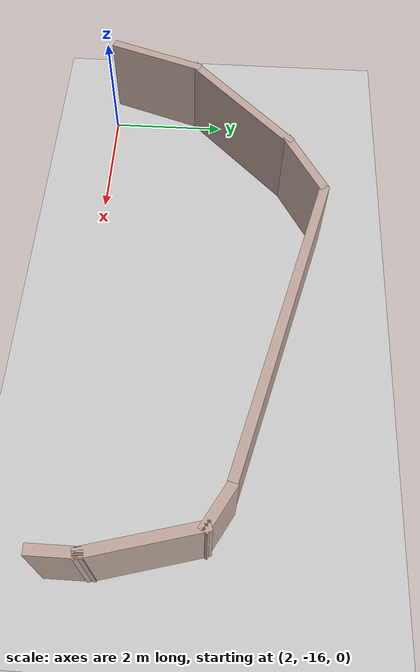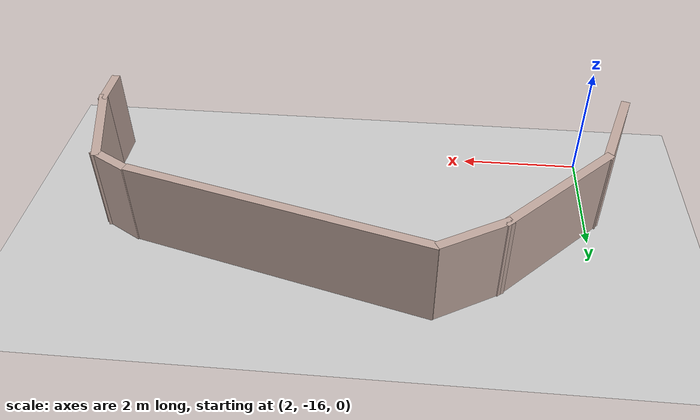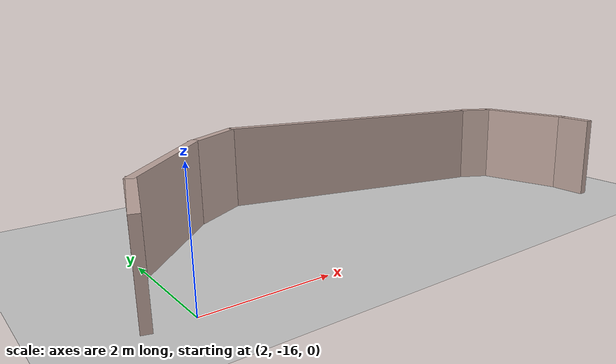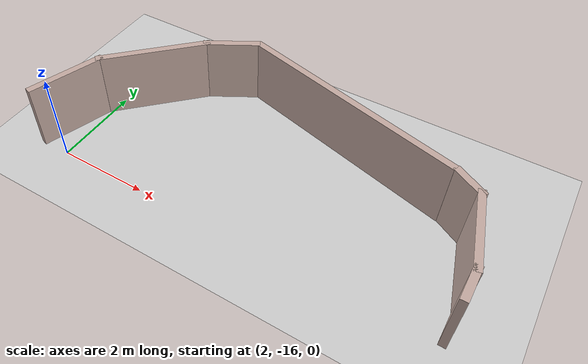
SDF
<sdf version="1.7">
 <world name="default">
  <model name="ground_plane">
   <static>1</static>
   <link name="link">
    <collision name="collision">
     <geometry><plane><normal>0 0 1</normal><size>100 100</size></plane></geometry>
     <surface><friction><ode><mu>100</mu><mu2>50</mu2></ode></friction></surface>
    </collision>
    <visual name="visual">
     <cast_shadows>0</cast_shadows>
     <geometry><plane><normal>0 0 1</normal><size>100 100</size></plane></geometry>
     <material>
      <script><uri>file://media/materials/scripts/gazebo.material</uri><name>Gazebo/Grey</name></script>
     </material>
    </visual>
   </link>
  </model>
  <model name="wall1">
   <pose>6.97273 -12.8415 0 0 0 -0.014727</pose>
   <link name="Wall_0">
    <collision name="Wall_0_Collision">
     <geometry><box><size>5.09773 0.15 1.5</size></box></geometry>
     <pose>0 0 0.75 0 -0 0</pose>
    </collision>
    <visual name="Wall_0_Visual">
     <pose>0 0 0.75 0 -0 0</pose>
     <geometry><box><size>5.09773 0.15 1.5</size></box></geometry>
     <material>
      <script><uri>file://media/materials/scripts/gazebo.material</uri><name>Gazebo/Grey</name></script>
      <ambient>0.760784 0.662745 0.627451 1</ambient>
     </material>
     <meta><layer>0</layer></meta>
    </visual>
    <pose>0 0 0 0 -0 -0.244979</pose>
   </link>
   <static>1</static>
  </model>
  <model name="Obstract">
   <link name="Wall_0">
    <pose>-4.71274 -6.64107 0 0 -0 1.24905</pose>
    <visual name="Wall_0_Visual">
     <pose>0 0 0.75 0 -0 0</pose>
     <geometry><box><size>1.73114 0.15 1.5</size></box></geometry>
     <material>
      <script><uri>file://media/materials/scripts/gazebo.material</uri><name>Gazebo/Grey</name></script>
      <ambient>0.760784 0.662745 0.627451 1</ambient>
      <shader type="pixel"/>
     </material>
     <meta><layer>0</layer></meta>
    </visual>
    <collision name="Wall_0_Collision">
     <pose>0 0 0.75 0 -0 0</pose>
     <geometry><box><size>1.73114 0.15 1.5</size></box></geometry>
     <surface>
      <friction>
       <ode><mu>1</mu><mu2>1</mu2><fdir1>0 0 0</fdir1><slip1>0</slip1><slip2>0</slip2></ode>
       <torsional>
        <coefficient>1</coefficient>
        <patch_radius>0</patch_radius>
        <surface_radius>0</surface_radius>
        <use_patch_radius>1</use_patch_radius>
        <ode><slip>0</slip></ode>
       </torsional>
      </friction>
      <bounce><restitution_coefficient>0</restitution_coefficient><threshold>1e+06</threshold></bounce>
      <contact>
       <collide_without_contact>0</collide_without_contact>
       <collide_without_contact_bitmask>1</collide_without_contact_bitmask>
       <collide_bitmask>1</collide_bitmask>
       <ode>
        <soft_cfm>0</soft_cfm>
        <soft_erp>0.2</soft_erp>
        <kp>1e+13</kp>
        <kd>1</kd>
        <max_vel>0.01</max_vel>
        <min_depth>0</min_depth>
       </ode>
       <bullet>
        <split_impulse>1</split_impulse>
        <split_impulse_penetration_threshold>-0.01</split_impulse_penetration_threshold>
        <soft_cfm>0</soft_cfm>
        <soft_erp>0.2</soft_erp>
        <kp>1e+13</kp>
        <kd>1</kd>
       </bullet>
      </contact>
     </surface>
    </collision>
   </link>
   <link name="Wall_2">
    <pose>-3.63175 -5.06007 0 0 -0 0.785398</pose>
    <visual name="Wall_2_Visual">
     <pose>0 0 0.75 0 -0 0</pose>
     <geometry><box><size>2.5 0.15 1.5</size></box></geometry>
     <material>
      <script><uri>file://media/materials/scripts/gazebo.material</uri><name>Gazebo/Grey</name></script>
      <ambient>0.760784 0.662745 0.627451 1</ambient>
      <shader type="pixel"/>
     </material>
     <meta><layer>0</layer></meta>
    </visual>
    <collision name="Wall_2_Collision">
     <pose>0 0 0.75 0 -0 0</pose>
     <geometry><box><size>2.5 0.15 1.5</size></box></geometry>
     <surface>
      <friction>
       <ode><mu>1</mu><mu2>1</mu2><fdir1>0 0 0</fdir1><slip1>0</slip1><slip2>0</slip2></ode>
       <torsional>
        <coefficient>1</coefficient>
        <patch_radius>0</patch_radius>
        <surface_radius>0</surface_radius>
        <use_patch_radius>1</use_patch_radius>
        <ode><slip>0</slip></ode>
       </torsional>
      </friction>
      <bounce><restitution_coefficient>0</restitution_coefficient><threshold>1e+06</threshold></bounce>
      <contact>
       <collide_without_contact>0</collide_without_contact>
       <collide_without_contact_bitmask>1</collide_without_contact_bitmask>
       <collide_bitmask>1</collide_bitmask>
       <ode>
        <soft_cfm>0</soft_cfm>
        <soft_erp>0.2</soft_erp>
        <kp>1e+13</kp>
        <kd>1</kd>
        <max_vel>0.01</max_vel>
        <min_depth>0</min_depth>
       </ode>
       <bullet>
        <split_impulse>1</split_impulse>
        <split_impulse_penetration_threshold>-0.01</split_impulse_penetration_threshold>
        <soft_cfm>0</soft_cfm>
        <soft_erp>0.2</soft_erp>
        <kp>1e+13</kp>
        <kd>1</kd>
       </bullet>
      </contact>
     </surface>
    </collision>
   </link>
   <link name="Wall_3">
    <pose>-2.32475 -3.95407 0 0 -0 0.523884</pose>
    <visual name="Wall_3_Visual">
     <pose>0 0 0.75 0 -0 0</pose>
     <geometry><box><size>1.25 0.15 1.5</size></box></geometry>
     <material>
      <script><uri>file://media/materials/scripts/gazebo.material</uri><name>Gazebo/Grey</name></script>
      <ambient>0.760784 0.662745 0.627451 1</ambient>
      <shader type="pixel"/>
     </material>
     <meta><layer>0</layer></meta>
    </visual>
    <collision name="Wall_3_Collision">
     <pose>0 0 0.75 0 -0 0</pose>
     <geometry><box><size>1.25 0.15 1.5</size></box></geometry>
     <surface>
      <friction>
       <ode><mu>1</mu><mu2>1</mu2><fdir1>0 0 0</fdir1><slip1>0</slip1><slip2>0</slip2></ode>
       <torsional>
        <coefficient>1</coefficient>
        <patch_radius>0</patch_radius>
        <surface_radius>0</surface_radius>
        <use_patch_radius>1</use_patch_radius>
        <ode><slip>0</slip></ode>
       </torsional>
      </friction>
      <bounce><restitution_coefficient>0</restitution_coefficient><threshold>1e+06</threshold></bounce>
      <contact>
       <collide_without_contact>0</collide_without_contact>
       <collide_without_contact_bitmask>1</collide_without_contact_bitmask>
       <collide_bitmask>1</collide_bitmask>
       <ode>
        <soft_cfm>0</soft_cfm>
        <soft_erp>0.2</soft_erp>
        <kp>1e+13</kp>
        <kd>1</kd>
        <max_vel>0.01</max_vel>
        <min_depth>0</min_depth>
       </ode>
       <bullet>
        <split_impulse>1</split_impulse>
        <split_impulse_penetration_threshold>-0.01</split_impulse_penetration_threshold>
        <soft_cfm>0</soft_cfm>
        <soft_erp>0.2</soft_erp>
        <kp>1e+13</kp>
        <kd>1</kd>
       </bullet>
      </contact>
     </surface>
    </collision>
   </link>
   <link name="Wall_5">
    <pose>4.07425 -7.09807 0 0 -0 1.5708</pose>
    <visual name="Wall_5_Visual">
     <pose>0 0 0.75 0 -0 0</pose>
     <geometry><box><size>0.75 0.15 1.5</size></box></geometry>
     <material>
      <script><uri>file://media/materials/scripts/gazebo.material</uri><name>Gazebo/Grey</name></script>
      <ambient>0.760784 0.662745 0.627451 1</ambient>
      <shader type="pixel"/>
     </material>
     <meta><layer>0</layer></meta>
    </visual>
    <collision name="Wall_5_Collision">
     <pose>0 0 0.75 0 -0 0</pose>
     <geometry><box><size>0.75 0.15 1.5</size></box></geometry>
     <surface>
      <friction>
       <ode><mu>1</mu><mu2>1</mu2><fdir1>0 0 0</fdir1><slip1>0</slip1><slip2>0</slip2></ode>
       <torsional>
        <coefficient>1</coefficient>
        <patch_radius>0</patch_radius>
        <surface_radius>0</surface_radius>
        <use_patch_radius>1</use_patch_radius>
        <ode><slip>0</slip></ode>
       </torsional>
      </friction>
      <bounce><restitution_coefficient>0</restitution_coefficient><threshold>1e+06</threshold></bounce>
      <contact>
       <collide_without_contact>0</collide_without_contact>
       <collide_without_contact_bitmask>1</collide_without_contact_bitmask>
       <collide_bitmask>1</collide_bitmask>
       <ode>
        <soft_cfm>0</soft_cfm>
        <soft_erp>0.2</soft_erp>
        <kp>1e+13</kp>
        <kd>1</kd>
        <max_vel>0.01</max_vel>
        <min_depth>0</min_depth>
       </ode>
       <bullet>
        <split_impulse>1</split_impulse>
        <split_impulse_penetration_threshold>-0.01</split_impulse_penetration_threshold>
        <soft_cfm>0</soft_cfm>
        <soft_erp>0.2</soft_erp>
        <kp>1e+13</kp>
        <kd>1</kd>
       </bullet>
      </contact>
     </surface>
    </collision>
   </link>
   <link name="Wall_6">
    <pose>3.86726 -6.02557 0 0 -0 1.83261</pose>
    <visual name="Wall_6_Visual">
     <pose>0 0 0.75 0 -0 0</pose>
     <geometry><box><size>1.75 0.15 1.5</size></box></geometry>
     <material>
      <script><uri>file://media/materials/scripts/gazebo.material</uri><name>Gazebo/Grey</name></script>
      <ambient>0.760784 0.662745 0.627451 1</ambient>
      <shader type="pixel"/>
     </material>
     <meta><layer>0</layer></meta>
    </visual>
    <collision name="Wall_6_Collision">
     <pose>0 0 0.75 0 -0 0</pose>
     <geometry><box><size>1.75 0.15 1.5</size></box></geometry>
     <surface>
      <friction>
       <ode><mu>1</mu><mu2>1</mu2><fdir1>0 0 0</fdir1><slip1>0</slip1><slip2>0</slip2></ode>
       <torsional>
        <coefficient>1</coefficient>
        <patch_radius>0</patch_radius>
        <surface_radius>0</surface_radius>
        <use_patch_radius>1</use_patch_radius>
        <ode><slip>0</slip></ode>
       </torsional>
      </friction>
      <bounce><restitution_coefficient>0</restitution_coefficient><threshold>1e+06</threshold></bounce>
      <contact>
       <collide_without_contact>0</collide_without_contact>
       <collide_without_contact_bitmask>1</collide_without_contact_bitmask>
       <collide_bitmask>1</collide_bitmask>
       <ode>
        <soft_cfm>0</soft_cfm>
        <soft_erp>0.2</soft_erp>
        <kp>1e+13</kp>
        <kd>1</kd>
        <max_vel>0.01</max_vel>
        <min_depth>0</min_depth>
       </ode>
       <bullet>
        <split_impulse>1</split_impulse>
        <split_impulse_penetration_threshold>-0.01</split_impulse_penetration_threshold>
        <soft_cfm>0</soft_cfm>
        <soft_erp>0.2</soft_erp>
        <kp>1e+13</kp>
        <kd>1</kd>
       </bullet>
      </contact>
     </surface>
    </collision>
   </link>
   <link name="Wall_7">
    <pose>3.40026 -5.10307 0 0 -0 2.61831</pose>
    <visual name="Wall_7_Visual">
     <pose>0 0 0.75 0 -0 0</pose>
     <geometry><box><size>0.75 0.15 1.5</size></box></geometry>
     <material>
      <script><uri>file://media/materials/scripts/gazebo.material</uri><name>Gazebo/Grey</name></script>
      <ambient>0.760784 0.662745 0.627451 1</ambient>
      <shader type="pixel"/>
     </material>
     <meta><layer>0</layer></meta>
    </visual>
    <collision name="Wall_7_Collision">
     <pose>0 0 0.75 0 -0 0</pose>
     <geometry><box><size>0.75 0.15 1.5</size></box></geometry>
     <surface>
      <friction>
       <ode><mu>1</mu><mu2>1</mu2><fdir1>0 0 0</fdir1><slip1>0</slip1><slip2>0</slip2></ode>
       <torsional>
        <coefficient>1</coefficient>
        <patch_radius>0</patch_radius>
        <surface_radius>0</surface_radius>
        <use_patch_radius>1</use_patch_radius>
        <ode><slip>0</slip></ode>
       </torsional>
      </friction>
      <bounce><restitution_coefficient>0</restitution_coefficient><threshold>1e+06</threshold></bounce>
      <contact>
       <collide_without_contact>0</collide_without_contact>
       <collide_without_contact_bitmask>1</collide_without_contact_bitmask>
       <collide_bitmask>1</collide_bitmask>
       <ode>
        <soft_cfm>0</soft_cfm>
        <soft_erp>0.2</soft_erp>
        <kp>1e+13</kp>
        <kd>1</kd>
        <max_vel>0.01</max_vel>
        <min_depth>0</min_depth>
       </ode>
       <bullet>
        <split_impulse>1</split_impulse>
        <split_impulse_penetration_threshold>-0.01</split_impulse_penetration_threshold>
        <soft_cfm>0</soft_cfm>
        <soft_erp>0.2</soft_erp>
        <kp>1e+13</kp>
        <kd>1</kd>
       </bullet>
      </contact>
     </surface>
    </collision>
   </link>
   <static>1</static>
   <pose>6.34105 -8.55443 0 0 -0 0</pose>
  </model>
 </world>
</sdf>
